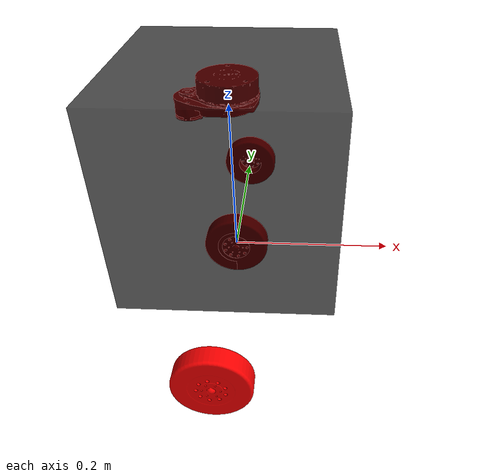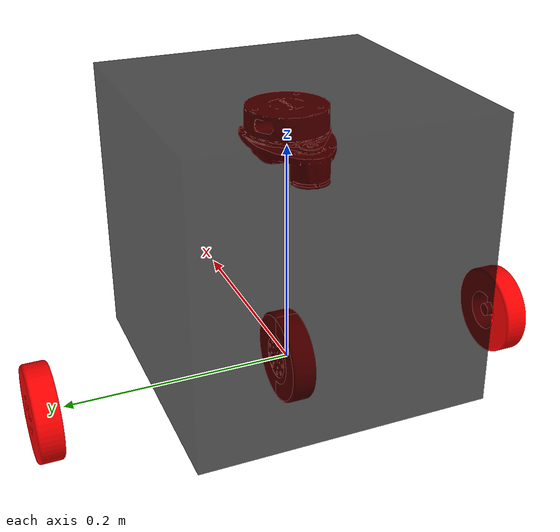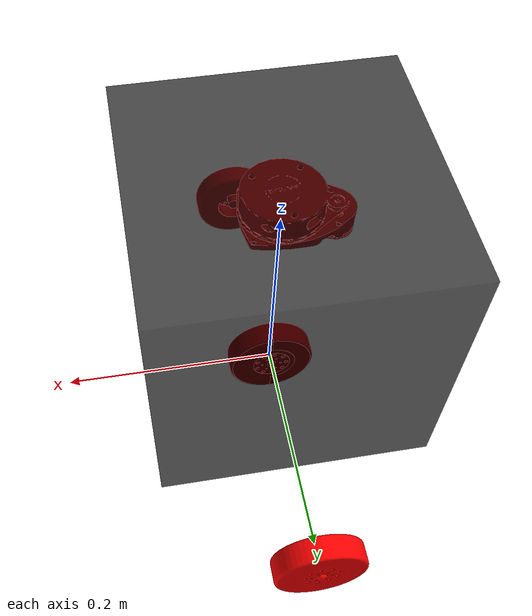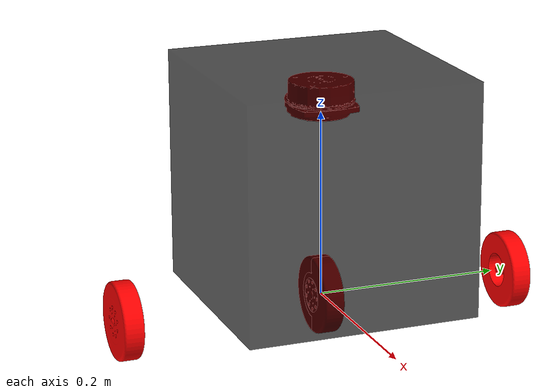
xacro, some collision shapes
<?xml version="1.0"?>
<robot name="simple" xmlns:xacro="http://ros.org/wiki/xacro">

  <xacro:include filename="$(find neuronbot2_lecture)/urdf/macros.xacro" />

  <!-- Color definition -->
  <material name="white">
    <color rgba="1 1 1 0.6"/>
  </material>

  <material name="black">
    <color rgba="0 0 0 0.7"/>
  </material>

  <material name="red">
    <color rgba="1 0 0 1"/>
  </material>

  <link name="base_footprint" />

  <link name="base_link">
    <inertial>
      <origin
        xyz="0 0 0"
        rpy="0 0 0" />
      <mass
        value="8.3" />
      <inertia
        ixx="5.249466E+13"
        ixy="-1.398065E+12"
        ixz="-3.158592E+12"
        iyy="5.786727E+13"
        iyz="-5.159120E+11"
        izz="3.114993E+13" />
    </inertial>
    <visual>
      <origin
        xyz="0 0 0"
        rpy="0 3.1415 3.1415" />
      <geometry>
        <mesh filename="${base_link_stl}" scale="0.001 0.001 0.001"/>
      </geometry>
      <material name="black"/>
    </visual>
    <collision>
      <origin
        xyz="0 0 0.125"
        rpy="0 0 0" />
      <geometry>
          <box size="0.25 0.25 0.25" />
      </geometry>
      <material name="black"/>
    </collision>
  </link>

  <link name="laser_frame">
    <inertial>
      <origin
        xyz="0 0 0"
        rpy="0 0 0" />
      <mass
        value="0.362" />
      <inertia
        ixx="2.634758E+07"
        ixy="1.854066E+05"
        ixz="-2.027321E+07"
        iyy="6.138498E+07"
        iyz="-8.570560E+04"
        izz="5.234910E+07" />
    </inertial>
    <visual>
      <origin
        xyz="0 0 0"
        rpy="0 0 0" />
      <geometry>
        <mesh
          filename="package://neuronbot2_description/meshes/neuronbot2/laser_link.stl" scale="0.001 0.001 0.001"/>
      </geometry>
      <material name="red"/>
    </visual>
    <collision>
      <origin
        xyz="0 0 0"
        rpy="0 0 0" />
      <geometry>
        <mesh
          filename="package://neuronbot2_description/meshes/neuronbot2/laser_link.stl" scale="0.001 0.001 0.001"/>
      </geometry>
      <material name="red"/>
    </collision>
  </link>

  <link name="imu_link"/>

  <xacro:wheel_links link_name="wheel_right_link" />
  <xacro:wheel_links link_name="wheel_left_link" />

  <joint name="base_link_joint" type="fixed">
    <origin xyz="0 0 0" rpy="0 0 0"/>
    <parent link="base_footprint"/>
    <child link="base_link"/>
  </joint>

  <joint name="laser_frame_joint" type="fixed">
    <origin
      xyz="0 0 0.205"
      rpy="0 0 0" />
    <parent link="base_link" />
    <child link="laser_frame" />
    <axis xyz="0 0 0" />
  </joint>

  <joint name="imu_joint" type="fixed">
    <origin rpy="0 0 0" xyz="0 0 -0.05"/>
    <axis xyz="0 0 0" />
    <parent link="base_link"/>
    <child link="imu_link"/>
  </joint>

  <xacro:wheel_joints
    joint_name="r_wheel_joint"
    child_name="wheel_right_link"
    y_sign="-1"
    yaw_offset="3.14"
  />

  <xacro:wheel_joints
    joint_name="l_wheel_joint"
    child_name="wheel_left_link"
    y_sign="+1"
    yaw_offset="0.0"
  />

</robot>

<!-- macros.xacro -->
<robot name="simple" xmlns:xacro="http://www.ros.org/wiki/xacro">

  <xacro:property name="base_link_stl" value="package://neuronbot2_description/meshes/neuronbot2/base_link.stl" />

  <xacro:macro name="wheel_joints" params="joint_name child_name y_sign yaw_offset">
    <joint name="${joint_name}" type="continuous">
      <parent link="base_link"/>
      <child link="${child_name}"/>
      <origin xyz="0.0 ${y_sign*0.109} 0.0415" rpy="0 0 ${yaw_offset}"/>
      <axis xyz="0 1 0"/>
    </joint>
  </xacro:macro>

  <xacro:macro name="wheel_links" params="link_name">
    <link name="${link_name}">
      <visual>
        <origin xyz="0 0 0" rpy="0 0 0"/>
        <geometry>
          <mesh filename="package://neuronbot2_description/meshes/neuronbot2/wheel_link.stl" scale="0.001 0.001 0.001"/>
        </geometry>
        <material name="red"/>
      </visual>
      <collision>
        <origin xyz="0 0 0" rpy="0 0 0"/>
        <geometry>
          <mesh filename="package://neuronbot2_description/meshes/neuronbot2/wheel_link.stl" scale="0.001 0.001 0.001"/>
        </geometry>
        <material name="red"/>
      </collision>
    </link>
  </xacro:macro>

</robot>
